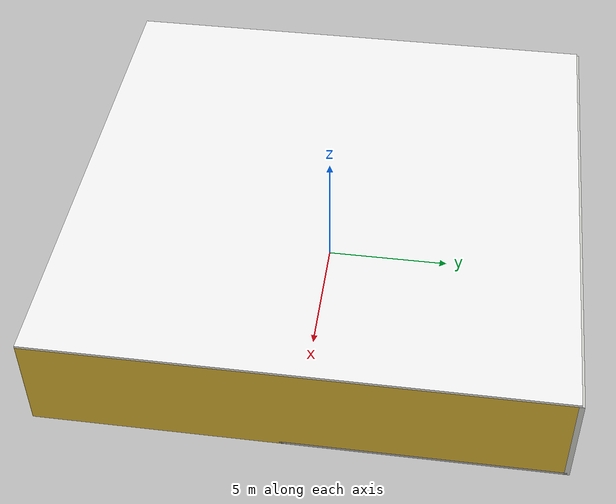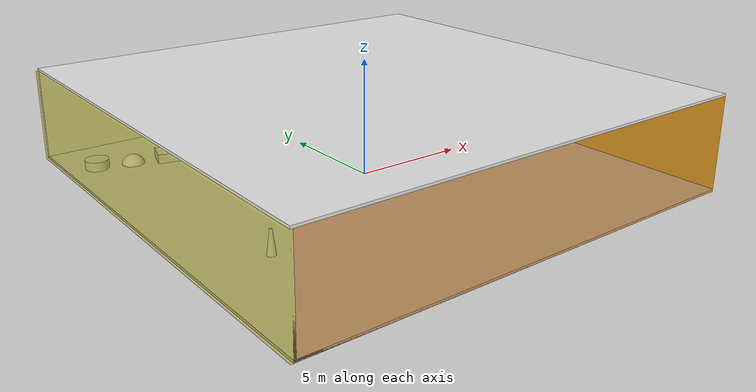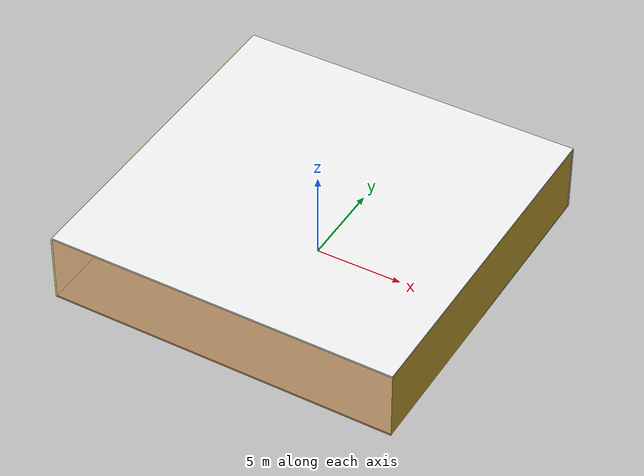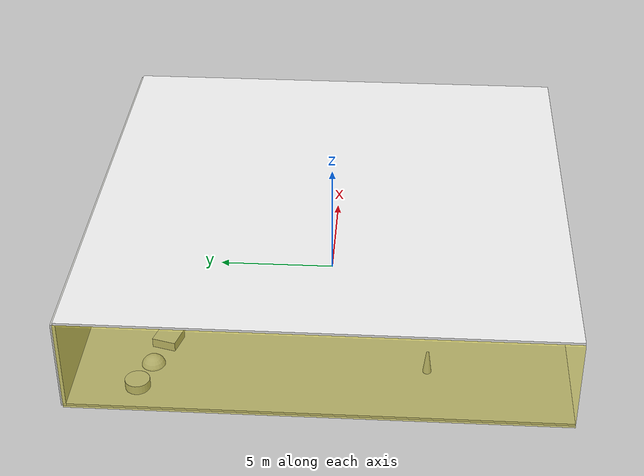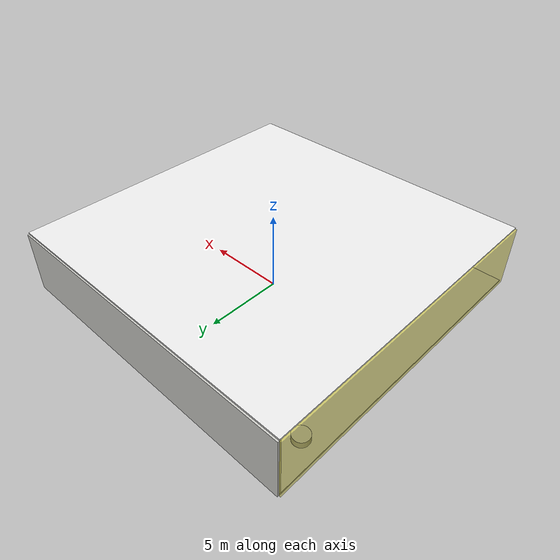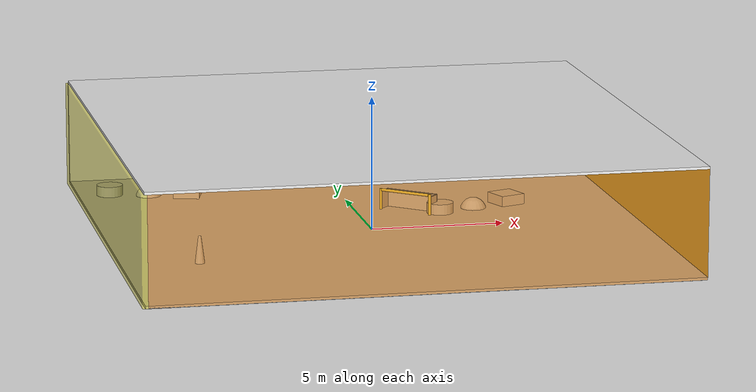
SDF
<sdf version="1.4">
 <world name="default">
  <physics type="ode">
   <max_step_size>0.001</max_step_size>
   <real_time_factor>1</real_time_factor>
   <real_time_update_rate>1000</real_time_update_rate>
   <gravity>0 0 -9.8</gravity>
  </physics>
  <scene><ambient>0.4 0.4 0.4 1</ambient><background>0.7 0.7 0.7 1</background><shadows>1</shadows></scene>
  <model name="Surrounding">
   <static>1</static>
   <link name="Ceiling">
    <collision name="Ceiling_Collision"><geometry><box><size>20 20 0.1</size></box></geometry></collision>
    <visual name="Ceiling_Visual">
     <geometry><box><size>20 20 0.1</size></box></geometry>
     <material>
      <script><uri>file://media/materials/scripts/gazebo.material</uri><name>Gazebo/WhiteGlow</name></script>
     </material>
    </visual>
    <pose>0 0 4.05 0 0 0</pose>
   </link>
   <link name="Wall_South">
    <collision name="Wall_South_Collision">
     <geometry><box><size>20 0 4</size></box></geometry>
     <pose>0 0 2 0 -0 0</pose>
    </collision>
    <visual name="Wall_South_Visual">
     <pose>0 0 2 0 -0 0</pose>
     <geometry><box><size>20 0 4</size></box></geometry>
     <material>
      <script>
       <uri>file://media/materials/scripts/gazebo.material</uri>
       <name>Gazebo/OrangeTransparent</name>
      </script>
     </material>
    </visual>
    <velocity_decay><linear>0</linear><angular>0</angular></velocity_decay>
    <pose>0 -10 0 0 -0 0</pose>
   </link>
   <link name="Wall_East">
    <collision name="Wall_21_Collision">
     <geometry><box><size>20 0 4</size></box></geometry>
     <pose>0 0 2 0 -0 0</pose>
    </collision>
    <visual name="Wall_21_Visual">
     <pose>0 0 2 0 -0 0</pose>
     <geometry><box><size>20 0 4</size></box></geometry>
     <material>
      <script><uri>file://media/materials/scripts/gazebo.material</uri><name>Gazebo/Gold</name></script>
     </material>
    </visual>
    <velocity_decay><linear>0</linear><angular>0</angular></velocity_decay>
    <pose>10 0 0 0 -0 1.5708</pose>
   </link>
   <link name="Wall_North">
    <collision name="Wall_22_Collision">
     <geometry><box><size>20 0.2 4</size></box></geometry>
     <pose>0 0 2 0 -0 0</pose>
    </collision>
    <visual name="Wall_22_Visual">
     <pose>0 0 2 0 -0 0</pose>
     <geometry><box><size>20 0.2 4</size></box></geometry>
     <material>
      <script><uri>file://media/materials/scripts/gazebo.material</uri><name>Gazebo/CeilingTiled</name></script>
     </material>
    </visual>
    <velocity_decay><linear>0</linear><angular>0</angular></velocity_decay>
    <pose>0 10 0 0 -0 0</pose>
   </link>
   <link name="Wall_West">
    <collision name="Wall_23_Collision">
     <geometry><box><size>20 0.2 4</size></box></geometry>
     <pose>0 0 2 0 -0 0</pose>
    </collision>
    <visual name="Wall_23_Visual">
     <pose>0 0 2 0 -0 0</pose>
     <geometry><box><size>20 0.2 4</size></box></geometry>
     <material>
      <script>
       <uri>file://media/materials/scripts/gazebo.material</uri>
       <name>Gazebo/YellowTransparent</name>
      </script>
     </material>
    </visual>
    <velocity_decay><linear>0</linear><angular>0</angular></velocity_decay>
    <pose>-10 0 0 0 0 -1.5708</pose>
   </link>
   <link name="Ground_link">
    <collision name="collision">
     <pose>0 0 .05 0 -0 0</pose>
     <geometry><box><size>20 20 0.1</size></box></geometry>
    </collision>
    <visual name="visual">
     <pose>0 0 .05 0 -0 0</pose>
     <geometry><box><size>20 20 0.1</size></box></geometry>
     <material>
      <script><uri>file://media/materials/scripts/gazebo.material</uri><name>Gazebo/LightOff</name></script>
     </material>
    </visual>
   </link>
   <static>1</static>
  </model>
  <spherical_coordinates>
   <surface_model>EARTH_WGS84</surface_model>
   <latitude_deg>0</latitude_deg>
   <longitude_deg>0</longitude_deg>
   <elevation>0</elevation>
   <heading_deg>0</heading_deg>
  </spherical_coordinates>
  <light name="lightball_0" type="diffuse">
   <diffuse>0.8 0.8 0.8 1</diffuse>
   <specular>0.2 0.2 0.2 1</specular>
   <attenuation>
    <range>100</range>
    <constant>0.7</constant>
    <linear>0.01</linear>
    <quadratic>0.001</quadratic>
   </attenuation>
   <direction>-0.5 0.1 -0.9</direction>
   <pose>1.65332542003 7.88660030091 0.68943035153 0 0 0</pose>
  </light>
  <light name="lightball_1" type="diffuse">
   <diffuse>0.8 0.8 0.8 1</diffuse>
   <specular>0.2 0.2 0.2 1</specular>
   <attenuation>
    <range>100</range>
    <constant>0.7</constant>
    <linear>0.01</linear>
    <quadratic>0.001</quadratic>
   </attenuation>
   <direction>-0.5 0.1 -0.9</direction>
   <pose>-7.46000876202 -8.63173622503 2.93639858233 0 0 0</pose>
  </light>
  <light name="lightball_2" type="diffuse">
   <diffuse>0.8 0.8 0.8 1</diffuse>
   <specular>0.2 0.2 0.2 1</specular>
   <attenuation>
    <range>100</range>
    <constant>0.7</constant>
    <linear>0.01</linear>
    <quadratic>0.001</quadratic>
   </attenuation>
   <direction>-0.5 0.1 -0.9</direction>
   <pose>4.95809137141 -4.02905385029 2.16945955087 0 0 0</pose>
  </light>
  <light name="lightball_3" type="diffuse">
   <diffuse>0.8 0.8 0.8 1</diffuse>
   <specular>0.2 0.2 0.2 1</specular>
   <attenuation>
    <range>100</range>
    <constant>0.7</constant>
    <linear>0.01</linear>
    <quadratic>0.001</quadratic>
   </attenuation>
   <direction>-0.5 0.1 -0.9</direction>
   <pose>3.78194804502 -7.06965584813 1.12863460171 0 0 0</pose>
  </light>
  <light name="lightball_4" type="diffuse">
   <diffuse>0.8 0.8 0.8 1</diffuse>
   <specular>0.2 0.2 0.2 1</specular>
   <attenuation>
    <range>100</range>
    <constant>0.7</constant>
    <linear>0.01</linear>
    <quadratic>0.001</quadratic>
   </attenuation>
   <direction>-0.5 0.1 -0.9</direction>
   <pose>5.26753557753 6.40829559211 2.75786015125 0 0 0</pose>
  </light>
  <light name="lightball_5" type="diffuse">
   <diffuse>0.8 0.8 0.8 1</diffuse>
   <specular>0.2 0.2 0.2 1</specular>
   <attenuation>
    <range>100</range>
    <constant>0.7</constant>
    <linear>0.01</linear>
    <quadratic>0.001</quadratic>
   </attenuation>
   <direction>-0.5 0.1 -0.9</direction>
   <pose>2.43606067499 8.47417854012 2.3823723845 0 0 0</pose>
  </light>
  <light name="lightball_6" type="diffuse">
   <diffuse>0.8 0.8 0.8 1</diffuse>
   <specular>0.2 0.2 0.2 1</specular>
   <attenuation>
    <range>100</range>
    <constant>0.7</constant>
    <linear>0.01</linear>
    <quadratic>0.001</quadratic>
   </attenuation>
   <direction>-0.5 0.1 -0.9</direction>
   <pose>6.78774295284 -6.55391704696 1.8062611321 0 0 0</pose>
  </light>
  <light name="lightball_7" type="diffuse">
   <diffuse>0.8 0.8 0.8 1</diffuse>
   <specular>0.2 0.2 0.2 1</specular>
   <attenuation>
    <range>100</range>
    <constant>0.7</constant>
    <linear>0.01</linear>
    <quadratic>0.001</quadratic>
   </attenuation>
   <direction>-0.5 0.1 -0.9</direction>
   <pose>-2.95487879903 -0.0569364492524 2.13147249772 0 0 0</pose>
  </light>
  <light name="lightball_8" type="diffuse">
   <diffuse>0.8 0.8 0.8 1</diffuse>
   <specular>0.2 0.2 0.2 1</specular>
   <attenuation>
    <range>100</range>
    <constant>0.7</constant>
    <linear>0.01</linear>
    <quadratic>0.001</quadratic>
   </attenuation>
   <direction>-0.5 0.1 -0.9</direction>
   <pose>-8.44110766385 4.75568082697 2.19850789204 0 0 0</pose>
  </light>
  <light name="lightball_9" type="diffuse">
   <diffuse>0.8 0.8 0.8 1</diffuse>
   <specular>0.2 0.2 0.2 1</specular>
   <attenuation>
    <range>100</range>
    <constant>0.7</constant>
    <linear>0.01</linear>
    <quadratic>0.001</quadratic>
   </attenuation>
   <direction>-0.5 0.1 -0.9</direction>
   <pose>-3.42887317667 9.38195767748 1.25180016855 0 0 0</pose>
  </light>
  <light name="lightball_10" type="diffuse">
   <diffuse>0.8 0.8 0.8 1</diffuse>
   <specular>0.2 0.2 0.2 1</specular>
   <attenuation>
    <range>100</range>
    <constant>0.7</constant>
    <linear>0.01</linear>
    <quadratic>0.001</quadratic>
   </attenuation>
   <direction>-0.5 0.1 -0.9</direction>
   <pose>-9.5898846837 0.344761006528 3.10309269957 0 0 0</pose>
  </light>
  <light name="lightball_11" type="diffuse">
   <diffuse>0.8 0.8 0.8 1</diffuse>
   <specular>0.2 0.2 0.2 1</specular>
   <attenuation>
    <range>100</range>
    <constant>0.7</constant>
    <linear>0.01</linear>
    <quadratic>0.001</quadratic>
   </attenuation>
   <direction>-0.5 0.1 -0.9</direction>
   <pose>-1.55170202216 7.75143996821 3.20106031238 0 0 0</pose>
  </light>
  <include>
   <uri>model://construction_cone</uri>
   <pose>-7.18017926496 -4.26408946417 0 0 0 2.52865921986</pose>
  </include>
  <include>
   <uri>model://textured_shapes</uri>
   <pose>-7.35852024506 6.85801691672 0 0 0 1.30704537661</pose>
  </include>
  <include>
   <uri>model://robocup_3Dsim_goal</uri>
   <pose>1.71404716058 2.10343226902 0 0 0 0.856227339884</pose>
  </include>
  <include>
   <uri>model://textured_shapes</uri>
   <pose>4.39705858733 2.29112933212 0 0 0 1.92657993544</pose>
  </include>
 </world>
</sdf>

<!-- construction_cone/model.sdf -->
<sdf version="1.5">
  <model name="Construction Cone">
    <link name="link">
      <collision name="collision">
        <geometry>
          <mesh>
            <scale>10 10 10</scale>
            <uri>file://isr-testbed/construction_cone/meshes/construction_cone.dae</uri>
          </mesh>
        </geometry>
      </collision>
      <visual name="visual">
        <geometry>
          <mesh>
            <scale>10 10 10</scale>
            <uri>file://isr-testbed/construction_cone/meshes/construction_cone.dae</uri>
          </mesh>
        </geometry>
      </visual>
    </link>
  </model>
</sdf>

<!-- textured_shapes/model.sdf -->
<sdf version="1.6">
  <model name="textured_shapes">
    <pose>0 0 0.5 0 0 0</pose>
    <link name="box">
      <pose>0 -1.5 0 0 0 0</pose>
      <collision name="collision">
        <geometry>
          <box>
            <size>1 1 1</size>
          </box>
        </geometry>
      </collision>
      <visual name="visual">
        <geometry>
          <box>
            <size>1 1 1</size>
          </box>
        </geometry>
        <material>
          <script>
            <uri>model://../model_source/models/textured_shapes/materials/scripts</uri>
            <uri>model://../model_source/models/textured_shapes/materials/textures</uri>
            <name>TexturedShape/Squares</name>
          </script>
        </material>
      </visual>
    </link>
    <link name="sphere">
      <collision name="collision">
        <geometry>
          <sphere>
            <radius>0.5</radius>
          </sphere>
        </geometry>
      </collision>
      <visual name="visual">
        <geometry>
          <sphere>
            <radius>0.5</radius>
          </sphere>
        </geometry>
        <material>
          <script>
            <uri>model://../model_source/models/textured_shapes/materials/scripts</uri>
            <uri>model://../model_source/models/textured_shapes/materials/textures</uri>
            <name>TexturedShape/Squares</name>
          </script>
        </material>
      </visual>
    </link>
    <link name="cylinder">
      <pose>0 1.5 0 0 0 0</pose>
      <collision name="collision">
        <geometry>
          <cylinder>
            <radius>0.5</radius>
            <length>1</length>
          </cylinder>
        </geometry>
      </collision>
      <visual name="visual">
        <geometry>
          <cylinder>
            <radius>0.5</radius>
            <length>1</length>
          </cylinder>
        </geometry>
        <material>
          <script>
            <uri>model://../model_source/models/textured_shapes/materials/scripts</uri>
            <uri>model://../model_source/models/textured_shapes/materials/textures</uri>
            <name>TexturedShape/Squares</name>
          </script>
        </material>
      </visual>
    </link>
  </model>
</sdf>

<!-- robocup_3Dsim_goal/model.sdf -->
<sdf version="1.5">
  <model name="robocup_3d_goal">
    <static>true</static>
    <link name="left_post">
      <pose>0 1.05 0.45 0 0 0</pose>
      <collision name="collision">
        <geometry>
          <cylinder>
            <radius>0.05</radius>
            <length>0.9</length>
          </cylinder>
        </geometry>
      </collision>
      <visual name="visual">
        <geometry>
          <cylinder>
            <radius>0.05</radius>
            <length>0.9</length>
          </cylinder>
        </geometry>
        <material>
          <script>
            <uri>file://media/materials/scripts/gazebo.material</uri>
            <name>Gazebo/ZincYellow</name>
          </script>
        </material>
      </visual>
    </link>
    <link name="left_support_horiz_lower">
      <pose>0.30 1.05 0.01 0 0 0</pose>
      <collision name="collision">
        <geometry>
          <box>
            <size>0.50 0.02 0.02</size>
          </box>
        </geometry>
      </collision>
      <visual name="visual">
        <geometry>
          <box>
            <size>0.50 0.02 0.02</size>
          </box>
        </geometry>
        <material>
          <script>
            <uri>file://media/materials/scripts/gazebo.material</uri>
            <name>Gazebo/White</name>
          </script>
        </material>
      </visual>
    </link>
    <link name="left_support_horiz_upper">
      <pose>0.30 1.05 0.79 0 0 0</pose>
      <collision name="collision">
        <geometry>
          <box>
            <size>0.50 0.02 0.02</size>
          </box>
        </geometry>
      </collision>
      <visual name="visual">
        <geometry>
          <box>
            <size>0.50 0.02 0.02</size>
          </box>
        </geometry>
        <material>
          <script>
            <uri>file://media/materials/scripts/gazebo.material</uri>
            <name>Gazebo/White</name>
          </script>
        </material>
      </visual>
    </link>
    <link name="left_support_vertical">
      <pose>0.56 1.05 0.4 0 1.5708 0</pose>
      <collision name="collision">
        <geometry>
          <box>
            <size>0.80 0.02 0.02</size>
          </box>
        </geometry>
      </collision>
      <visual name="visual">
        <geometry>
          <box>
            <size>0.80 0.02 0.02</size>
          </box>
        </geometry>
        <material>
          <script>
            <uri>file://media/materials/scripts/gazebo.material</uri>
            <name>Gazebo/White</name>
          </script>
        </material>
      </visual>
    </link>
    <link name="right_support_horiz_lower">
      <pose>0.30 -1.05 0.01 0 0 0</pose>
      <collision name="collision">
        <geometry>
          <box>
            <size>0.50 0.02 0.02</size>
          </box>
        </geometry>
      </collision>
      <visual name="visual">
        <geometry>
          <box>
            <size>0.50 0.02 0.02</size>
          </box>
        </geometry>
        <material>
          <script>
            <uri>file://media/materials/scripts/gazebo.material</uri>
            <name>Gazebo/White</name>
          </script>
        </material>
      </visual>
    </link>
    <link name="right_support_horiz_upper">
      <pose>0.30 -1.05 0.79 0 0 0</pose>
      <collision name="collision">
        <geometry>
          <box>
            <size>0.50 0.02 0.02</size>
          </box>
        </geometry>
      </collision>
      <visual name="visual">
        <geometry>
          <box>
            <size>0.50 0.02 0.02</size>
          </box>
        </geometry>
        <material>
          <script>
            <uri>file://media/materials/scripts/gazebo.material</uri>
            <name>Gazebo/White</name>
          </script>
        </material>
      </visual>
    </link>
    <link name="right_support_vertical">
      <pose>0.56 -1.05 0.4 0 1.5708 0</pose>
      <collision name="collision">
        <geometry>
          <box>
            <size>0.80 0.02 0.02</size>
          </box>
        </geometry>
      </collision>
      <visual name="visual">
        <geometry>
          <box>
            <size>0.80 0.02 0.02</size>
          </box>
        </geometry>
        <material>
          <script>
            <uri>file://media/materials/scripts/gazebo.material</uri>
            <name>Gazebo/White</name>
          </script>
        </material>
      </visual>
    </link>
    <link name="center_support_horiz_lower">
      <pose>0.56 0 0.01 0 1.5708 0</pose>
      <collision name="collision">
        <geometry>
          <box>
            <size>0.02 2.08 0.02</size>
          </box>
        </geometry>
      </collision>
      <visual name="visual">
        <geometry>
          <box>
            <size>0.02 2.08 0.02</size>
          </box>
        </geometry>
        <material>
          <script>
            <uri>file://media/materials/scripts/gazebo.material</uri>
            <name>Gazebo/White</name>
          </script>
        </material>
      </visual>
    </link>
    <link name="center_support_horiz_upper">
      <pose>0.56 0 0.79 0 1.5708 0</pose>
      <collision name="collision">
        <geometry>
          <box>
            <size>0.02 2.08 0.02</size>
          </box>
        </geometry>
      </collision>
      <visual name="visual">
        <geometry>
          <box>
            <size>0.02 2.08 0.02</size>
          </box>
        </geometry>
        <material>
          <script>
            <uri>file://media/materials/scripts/gazebo.material</uri>
            <name>Gazebo/White</name>
          </script>
        </material>
      </visual>
    </link>
    <link name="right_post">
      <pose>0 -1.05 0.45 0 0 0</pose>
      <collision name="collision">
        <geometry>
          <cylinder>
            <radius>0.05</radius>
            <length>0.9</length>
          </cylinder>
        </geometry>
      </collision>
      <visual name="visual">
        <geometry>
          <cylinder>
            <radius>0.05</radius>
            <length>0.9</length>
          </cylinder>
        </geometry>
        <material>
          <script>
            <uri>file://media/materials/scripts/gazebo.material</uri>
            <name>Gazebo/ZincYellow</name>
          </script>
        </material>
      </visual>
    </link>
    <link name="crossbar">
      <pose>0 0 0.85 1.57 1.57 0</pose>
      <collision name="collision">
        <geometry>
          <cylinder>
            <radius>0.05</radius>
            <length>2.0</length>
          </cylinder>
        </geometry>
      </collision>
      <visual name="visual">
        <geometry>
          <cylinder>
            <radius>0.05</radius>
            <length>2.0</length>
          </cylinder>
        </geometry>
        <material>
          <script>
            <uri>file://media/materials/scripts/gazebo.material</uri>
            <name>Gazebo/ZincYellow</name>
          </script>
        </material>
      </visual>
    </link>
    <link name="center_net">
      <pose>0.56 0 0.40 0 0 0</pose>
      <collision name="collision">
        <geometry>
          <box>
            <size>0.01 2.1 0.80</size>
          </box>
        </geometry>
      </collision>
      <visual name="visual">
        <geometry>
          <box>
            <size>0.01 2.1 0.80</size>
          </box>
        </geometry>
        <material>
          <script>
            <uri>model://../model_source/models/robocup09_spl_field/materials/scripts/</uri>
            <uri>model://../model_source/models/robocup09_spl_field/materials/textures/</uri>
            <name>RoboCup/Net</name>
          </script>
        </material>
      </visual>
    </link>
    <link name="left_net">
      <pose>0.30 1.05 0.40 0 0 0</pose>
      <collision name="collision">
        <geometry>
          <box>
            <size>0.50 0.01 0.76</size>
          </box>
        </geometry>
      </collision>
      <visual name="visual">
        <geometry>
          <box>
            <size>0.50 0.01 0.76</size>
          </box>
        </geometry>
        <material>
          <script>
            <uri>model://../model_source/models/robocup09_spl_field/materials/scripts/</uri>
            <uri>model://../model_source/models/robocup09_spl_field/materials/textures/</uri>
            <name>RoboCup/Net</name>
          </script>
        </material>
      </visual>
    </link>
    <link name="right_net">
      <pose>0.30 -1.05 0.40 0 0 0</pose>
      <collision name="collision">
        <geometry>
          <box>
            <size>0.50 0.01 0.76</size>
          </box>
        </geometry>
      </collision>
      <visual name="visual">
        <geometry>
          <box>
            <size>0.50 0.01 0.76</size>
          </box>
        </geometry>
        <material>
          <script>
            <uri>model://../model_source/models/robocup09_spl_field/materials/scripts/</uri>
            <uri>model://../model_source/models/robocup09_spl_field/materials/textures/</uri>
            <name>RoboCup/Net</name>
          </script>
        </material>
      </visual>
    </link>
  </model>
</sdf>
